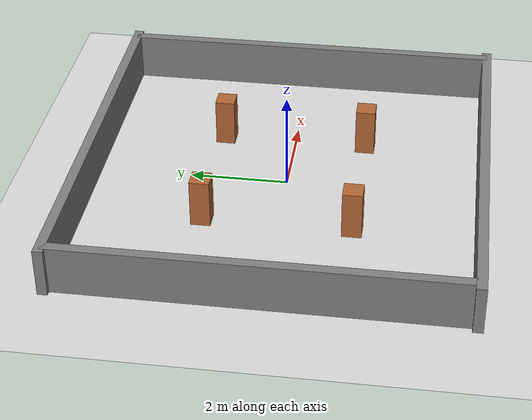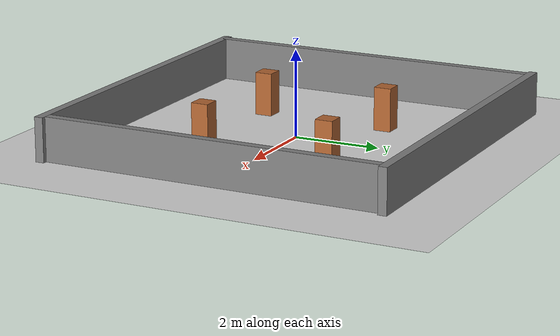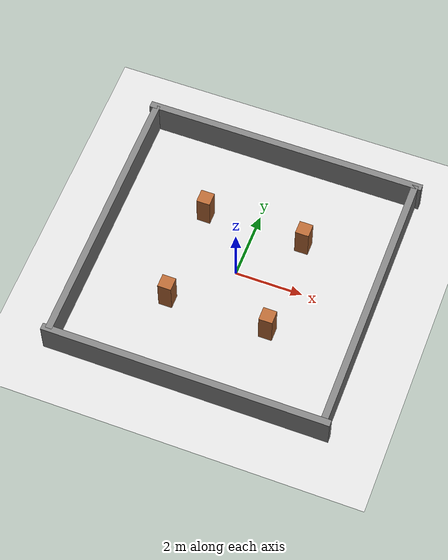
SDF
<?xml version="1.0" ?>
<sdf version="1.9">
  <world name="dynamic_world_static">

    <physics name="1ms" type="ignored">
      <max_step_size>0.001</max_step_size>
      <real_time_factor>2.0</real_time_factor>
    </physics>

    <plugin filename="gz-sim-physics-system"           name="gz::sim::systems::Physics"/>
    <plugin filename="gz-sim-user-commands-system"     name="gz::sim::systems::UserCommands"/>
    <plugin filename="gz-sim-scene-broadcaster-system" name="gz::sim::systems::SceneBroadcaster"/>
    <plugin filename="gz-sim-contact-system"           name="gz::sim::systems::Contact"/>
    <plugin filename="gz-sim-sensors-system" name="gz::sim::systems::Sensors">
      <render_engine>ogre2</render_engine>
    </plugin>
    <plugin filename="gz-sim-imu-system" name="gz::sim::systems::Imu"/>

    <light name="sun" type="directional">
      <cast_shadows>true</cast_shadows>
      <pose>0 0 10 0 0 0</pose>
      <diffuse>0.8 0.8 0.8 1</diffuse>
      <specular>0.2 0.2 0.2 1</specular>
      <direction>-0.5 0.1 -0.9</direction>
    </light>

    <model name="ground_plane">
      <static>true</static>
      <link name="link">
        <collision name="collision">
          <geometry><plane><normal>0 0 1</normal><size>20 20</size></plane></geometry>
          <surface>
            <friction>
              <ode>
                <mu>100000.0</mu>
                <mu2>100000.0</mu2>
                <slip1>0.0</slip1>
                <slip2>0.0</slip2>
              </ode>
            </friction>
          </surface>
        </collision>
        <visual name="visual">
          <geometry><plane><normal>0 0 1</normal><size>20 20</size></plane></geometry>
          <material><ambient>0.85 0.85 0.85 1</ambient><diffuse>0.85 0.85 0.85 1</diffuse></material>
        </visual>
      </link>
    </model>

    <!-- OUTER WALLS — 8×8 m room (wall centres ±4.0 m, inner face ±3.9 m) -->
    <model name="wall_north">
      <static>true</static>
      <pose>0 4.0 0.5 0 0 0</pose>
      <link name="link">
        <collision name="collision"><geometry><box><size>8.4 0.2 1</size></box></geometry></collision>
        <visual name="visual"><geometry><box><size>8.4 0.2 1</size></box></geometry>
          <material><ambient>0.5 0.5 0.5 1</ambient><diffuse>0.5 0.5 0.5 1</diffuse></material>
        </visual>
      </link>
    </model>

    <model name="wall_south">
      <static>true</static>
      <pose>0 -4.0 0.5 0 0 0</pose>
      <link name="link">
        <collision name="collision"><geometry><box><size>8.4 0.2 1</size></box></geometry></collision>
        <visual name="visual"><geometry><box><size>8.4 0.2 1</size></box></geometry>
          <material><ambient>0.5 0.5 0.5 1</ambient><diffuse>0.5 0.5 0.5 1</diffuse></material>
        </visual>
      </link>
    </model>

    <model name="wall_east">
      <static>true</static>
      <pose>4.0 0 0.5 0 0 0</pose>
      <link name="link">
        <collision name="collision"><geometry><box><size>0.2 8 1</size></box></geometry></collision>
        <visual name="visual"><geometry><box><size>0.2 8 1</size></box></geometry>
          <material><ambient>0.5 0.5 0.5 1</ambient><diffuse>0.5 0.5 0.5 1</diffuse></material>
        </visual>
      </link>
    </model>

    <model name="wall_west">
      <static>true</static>
      <pose>-4.0 0 0.5 0 0 0</pose>
      <link name="link">
        <collision name="collision"><geometry><box><size>0.2 8 1</size></box></geometry></collision>
        <visual name="visual"><geometry><box><size>0.2 8 1</size></box></geometry>
          <material><ambient>0.5 0.5 0.5 1</ambient><diffuse>0.5 0.5 0.5 1</diffuse></material>
        </visual>
      </link>
    </model>

    <!-- CORNER PILLARS — 0.4×0.4 m squares at (±1.5, ±1.5) -->
    <model name="pillar_ne">
      <static>true</static>
      <pose>1.5 1.5 0.5 0 0 0</pose>
      <link name="link">
        <collision name="collision"><geometry><box><size>0.4 0.4 1</size></box></geometry></collision>
        <visual name="visual"><geometry><box><size>0.4 0.4 1</size></box></geometry>
          <material><ambient>0.7 0.4 0.2 1</ambient><diffuse>0.7 0.4 0.2 1</diffuse></material>
        </visual>
      </link>
    </model>

    <model name="pillar_nw">
      <static>true</static>
      <pose>-1.5 1.5 0.5 0 0 0</pose>
      <link name="link">
        <collision name="collision"><geometry><box><size>0.4 0.4 1</size></box></geometry></collision>
        <visual name="visual"><geometry><box><size>0.4 0.4 1</size></box></geometry>
          <material><ambient>0.7 0.4 0.2 1</ambient><diffuse>0.7 0.4 0.2 1</diffuse></material>
        </visual>
      </link>
    </model>

    <model name="pillar_se">
      <static>true</static>
      <pose>1.5 -1.5 0.5 0 0 0</pose>
      <link name="link">
        <collision name="collision"><geometry><box><size>0.4 0.4 1</size></box></geometry></collision>
        <visual name="visual"><geometry><box><size>0.4 0.4 1</size></box></geometry>
          <material><ambient>0.7 0.4 0.2 1</ambient><diffuse>0.7 0.4 0.2 1</diffuse></material>
        </visual>
      </link>
    </model>

    <model name="pillar_sw">
      <static>true</static>
      <pose>-1.5 -1.5 0.5 0 0 0</pose>
      <link name="link">
        <collision name="collision"><geometry><box><size>0.4 0.4 1</size></box></geometry></collision>
        <visual name="visual"><geometry><box><size>0.4 0.4 1</size></box></geometry>
          <material><ambient>0.7 0.4 0.2 1</ambient><diffuse>0.7 0.4 0.2 1</diffuse></material>
        </visual>
      </link>
    </model>

  </world>
</sdf>
